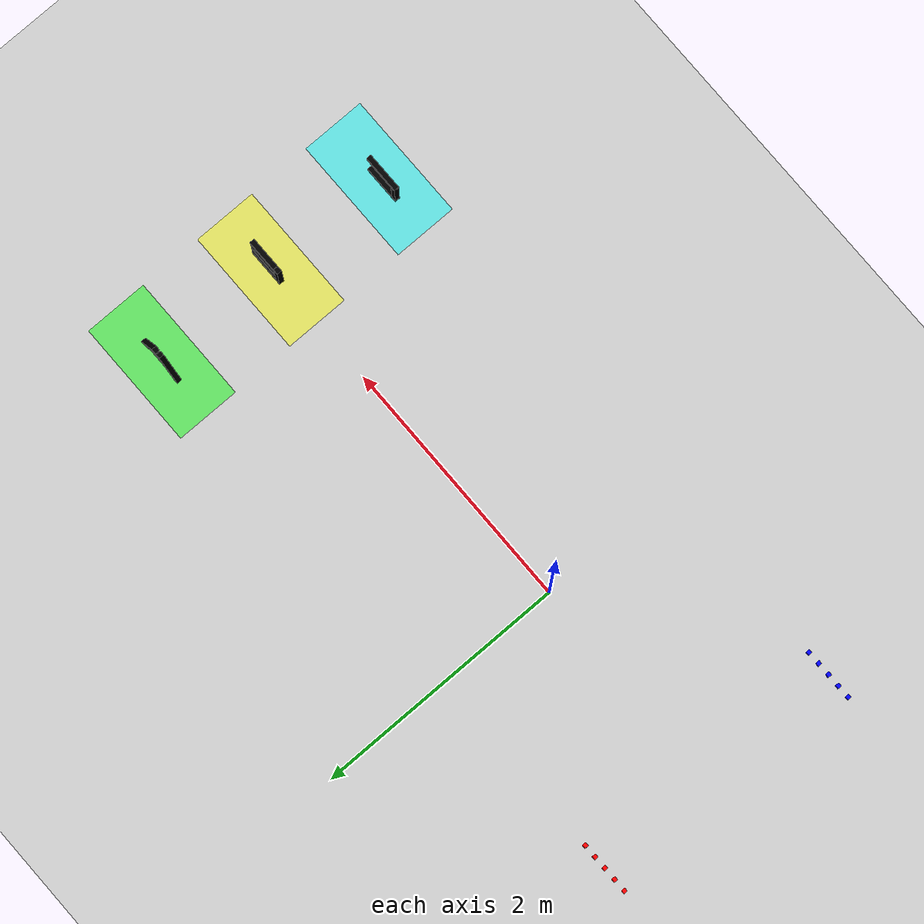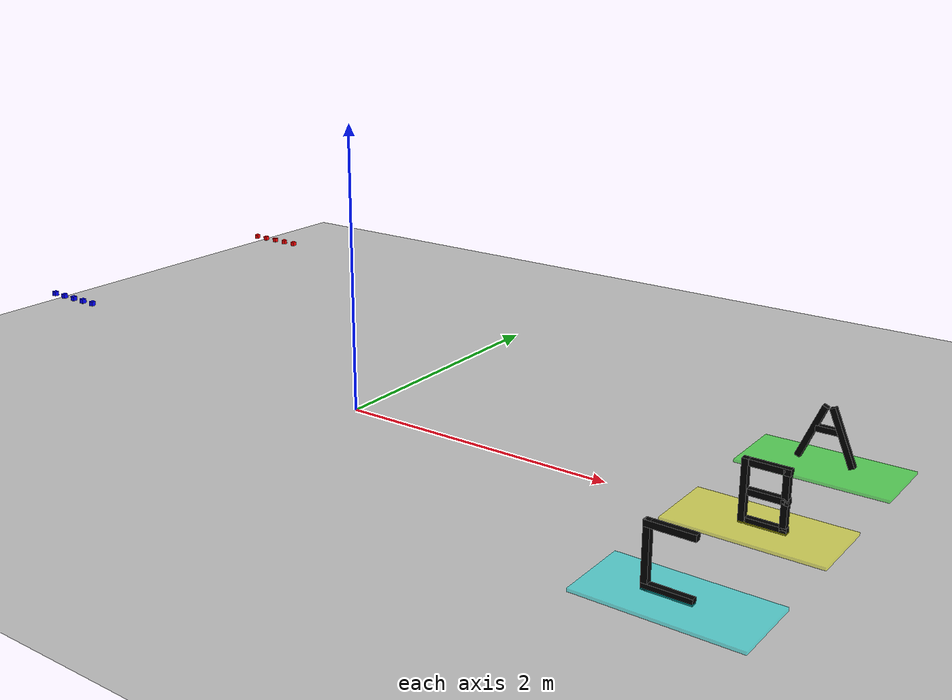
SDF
<sdf version="1.7">
 <world name="my_world">
  <model name="ground_plane">
   <static>1</static>
   <link name="link">
    <collision name="collision">
     <geometry><plane><normal>0 0 1</normal><size>100 100</size></plane></geometry>
     <surface>
      <contact><collide_bitmask>65535</collide_bitmask></contact>
      <friction><ode><mu>100</mu><mu2>50</mu2></ode></friction>
     </surface>
    </collision>
    <visual name="visual">
     <cast_shadows>0</cast_shadows>
     <geometry><plane><normal>0 0 1</normal><size>100 100</size></plane></geometry>
     <material>
      <script><uri>file://media/materials/scripts/gazebo.material</uri><name>Gazebo/Grey</name></script>
     </material>
    </visual>
   </link>
  </model>
  <model name="red_cube_1">
   <pose>-1.5 1 0.75 0 -0 0</pose>
   <link name="link">
    <inertial><mass>0.1</mass></inertial>
    <gravity>0</gravity>
    <collision name="collision">
     <laser_retro>130</laser_retro>
     <geometry><box><size>0.03 0.03 0.03</size></box></geometry>
     <surface><contact><collide_bitmask>0</collide_bitmask></contact></surface>
    </collision>
    <visual name="visual">
     <geometry><box><size>0.03 0.03 0.03</size></box></geometry>
     <material><ambient>1 0 0 1</ambient><diffuse>1 0 0 1</diffuse></material>
    </visual>
   </link>
  </model>
  <model name="red_cube_2">
   <pose>-1.6 1 0.75 0 -0 0</pose>
   <link name="link">
    <inertial><mass>0.1</mass></inertial>
    <gravity>0</gravity>
    <collision name="collision">
     <laser_retro>130</laser_retro>
     <geometry><box><size>0.03 0.03 0.03</size></box></geometry>
     <surface><contact><collide_bitmask>0</collide_bitmask></contact></surface>
    </collision>
    <visual name="visual">
     <geometry><box><size>0.03 0.03 0.03</size></box></geometry>
     <material><ambient>1 0 0 1</ambient><diffuse>1 0 0 1</diffuse></material>
    </visual>
   </link>
  </model>
  <model name="red_cube_3">
   <pose>-1.7 1 0.75 0 -0 0</pose>
   <link name="link">
    <inertial><mass>0.1</mass></inertial>
    <gravity>0</gravity>
    <collision name="collision">
     <laser_retro>130</laser_retro>
     <geometry><box><size>0.03 0.03 0.03</size></box></geometry>
     <surface><contact><collide_bitmask>0</collide_bitmask></contact></surface>
    </collision>
    <visual name="visual">
     <geometry><box><size>0.03 0.03 0.03</size></box></geometry>
     <material><ambient>1 0 0 1</ambient><diffuse>1 0 0 1</diffuse></material>
    </visual>
   </link>
  </model>
  <model name="red_cube_4">
   <pose>-1.8 1 0.75 0 -0 0</pose>
   <link name="link">
    <inertial><mass>0.1</mass></inertial>
    <gravity>0</gravity>
    <collision name="collision">
     <laser_retro>130</laser_retro>
     <geometry><box><size>0.03 0.03 0.03</size></box></geometry>
     <surface><contact><collide_bitmask>0</collide_bitmask></contact></surface>
    </collision>
    <visual name="visual">
     <geometry><box><size>0.03 0.03 0.03</size></box></geometry>
     <material><ambient>1 0 0 1</ambient><diffuse>1 0 0 1</diffuse></material>
    </visual>
   </link>
  </model>
  <model name="red_cube_5">
   <pose>-1.9 1 0.75 0 -0 0</pose>
   <link name="link">
    <inertial><mass>0.1</mass></inertial>
    <gravity>0</gravity>
    <collision name="collision">
     <laser_retro>130</laser_retro>
     <geometry><box><size>0.03 0.03 0.03</size></box></geometry>
     <surface><contact><collide_bitmask>0</collide_bitmask></contact></surface>
    </collision>
    <visual name="visual">
     <geometry><box><size>0.03 0.03 0.03</size></box></geometry>
     <material><ambient>1 0 0 1</ambient><diffuse>1 0 0 1</diffuse></material>
    </visual>
   </link>
  </model>
  <model name="blue_cube_1">
   <pose>-1.5 -1 0.75 0 -0 0</pose>
   <link name="link">
    <inertial><mass>0.1</mass></inertial>
    <gravity>0</gravity>
    <collision name="collision">
     <laser_retro>130</laser_retro>
     <geometry><box><size>0.03 0.03 0.03</size></box></geometry>
     <surface><contact><collide_bitmask>0</collide_bitmask></contact></surface>
    </collision>
    <visual name="visual">
     <geometry><box><size>0.03 0.03 0.03</size></box></geometry>
     <material><ambient>0 0 1 1</ambient><diffuse>0 0 1 1</diffuse></material>
    </visual>
   </link>
  </model>
  <model name="blue_cube_2">
   <pose>-1.6 -1 0.75 0 -0 0</pose>
   <link name="link">
    <inertial><mass>0.1</mass></inertial>
    <gravity>0</gravity>
    <collision name="collision">
     <laser_retro>130</laser_retro>
     <geometry><box><size>0.03 0.03 0.03</size></box></geometry>
     <surface><contact><collide_bitmask>0</collide_bitmask></contact></surface>
    </collision>
    <visual name="visual">
     <geometry><box><size>0.03 0.03 0.03</size></box></geometry>
     <material><ambient>0 0 1 1</ambient><diffuse>0 0 1 1</diffuse></material>
    </visual>
   </link>
  </model>
  <model name="blue_cube_3">
   <pose>-1.7 -1 0.75 0 -0 0</pose>
   <link name="link">
    <inertial><mass>0.1</mass></inertial>
    <gravity>0</gravity>
    <collision name="collision">
     <laser_retro>130</laser_retro>
     <geometry><box><size>0.03 0.03 0.03</size></box></geometry>
     <surface><contact><collide_bitmask>0</collide_bitmask></contact></surface>
    </collision>
    <visual name="visual">
     <geometry><box><size>0.03 0.03 0.03</size></box></geometry>
     <material><ambient>0 0 1 1</ambient><diffuse>0 0 1 1</diffuse></material>
    </visual>
   </link>
  </model>
  <model name="blue_cube_4">
   <pose>-1.8 -1 0.75 0 -0 0</pose>
   <link name="link">
    <inertial><mass>0.1</mass></inertial>
    <gravity>0</gravity>
    <collision name="collision">
     <laser_retro>130</laser_retro>
     <geometry><box><size>0.03 0.03 0.03</size></box></geometry>
     <surface><contact><collide_bitmask>0</collide_bitmask></contact></surface>
    </collision>
    <visual name="visual">
     <geometry><box><size>0.03 0.03 0.03</size></box></geometry>
     <material><ambient>0 0 1 1</ambient><diffuse>0 0 1 1</diffuse></material>
    </visual>
   </link>
  </model>
  <model name="blue_cube_5">
   <pose>-1.9 -1 0.75 0 -0 0</pose>
   <link name="link">
    <inertial><mass>0.1</mass></inertial>
    <gravity>0</gravity>
    <collision name="collision">
     <laser_retro>130</laser_retro>
     <geometry><box><size>0.03 0.03 0.03</size></box></geometry>
     <surface><contact><collide_bitmask>0</collide_bitmask></contact></surface>
    </collision>
    <visual name="visual">
     <geometry><box><size>0.03 0.03 0.03</size></box></geometry>
     <material><ambient>0 0 1 1</ambient><diffuse>0 0 1 1</diffuse></material>
    </visual>
   </link>
  </model>
  <model name="zone_a">
   <static>1</static>
   <pose>3 1 0.01 0 -0 0</pose>
   <link name="base">
    <visual name="visual">
     <geometry><box><size>1 0.5 0.02</size></box></geometry>
     <material><ambient>0 1 0 0.5</ambient><diffuse>0 1 0 0.5</diffuse></material>
    </visual>
   </link>
   <link name="letter_A_1">
    <pose>-0.1 0 0.22 0 0.4 0</pose>
    <visual name="v">
     <geometry><box><size>0.04 0.04 0.4</size></box></geometry>
     <material><ambient>0 0 0 1</ambient><diffuse>0 0 0 1</diffuse></material>
    </visual>
   </link>
   <link name="letter_A_2">
    <pose>0.1 0 0.22 0 -0.4 0</pose>
    <visual name="v">
     <geometry><box><size>0.04 0.04 0.4</size></box></geometry>
     <material><ambient>0 0 0 1</ambient><diffuse>0 0 0 1</diffuse></material>
    </visual>
   </link>
   <link name="letter_A_3">
    <pose>0 0 0.25 0 -0 0</pose>
    <visual name="v">
     <geometry><box><size>0.15 0.04 0.04</size></box></geometry>
     <material><ambient>0 0 0 1</ambient><diffuse>0 0 0 1</diffuse></material>
    </visual>
   </link>
  </model>
  <model name="zone_b">
   <static>1</static>
   <pose>3 0 0.01 0 -0 0</pose>
   <link name="base">
    <visual name="visual">
     <geometry><box><size>1 0.5 0.02</size></box></geometry>
     <material><ambient>1 1 0 0.5</ambient><diffuse>1 1 0 0.5</diffuse></material>
    </visual>
   </link>
   <link name="letter_B_vertical_stroke">
    <pose>-0.1 0 0.2 0 -0 0</pose>
    <visual name="v">
     <geometry><box><size>0.04 0.04 0.4</size></box></geometry>
     <material><ambient>0 0 0 1</ambient><diffuse>0 0 0 1</diffuse></material>
    </visual>
   </link>
   <link name="letter_B_top_horizontal">
    <pose>0.05 0 0.38 0 -0 0</pose>
    <visual name="v">
     <geometry><box><size>0.25 0.04 0.04</size></box></geometry>
     <material><ambient>0 0 0 1</ambient><diffuse>0 0 0 1</diffuse></material>
    </visual>
   </link>
   <link name="letter_B_middle_horizontal">
    <pose>0.05 0 0.2 0 -0 0</pose>
    <visual name="v">
     <geometry><box><size>0.25 0.04 0.04</size></box></geometry>
     <material><ambient>0 0 0 1</ambient><diffuse>0 0 0 1</diffuse></material>
    </visual>
   </link>
   <link name="letter_B_bottom_horizontal">
    <pose>0.05 0 0.02 0 -0 0</pose>
    <visual name="v">
     <geometry><box><size>0.25 0.04 0.04</size></box></geometry>
     <material><ambient>0 0 0 1</ambient><diffuse>0 0 0 1</diffuse></material>
    </visual>
   </link>
   <link name="letter_B_top_vertical_stroke">
    <pose>0.15 0 0.29 0 -0 0</pose>
    <visual name="v">
     <geometry><box><size>0.04 0.04 0.2</size></box></geometry>
     <material><ambient>0 0 0 1</ambient><diffuse>0 0 0 1</diffuse></material>
    </visual>
   </link>
   <link name="letter_B_bottom_vertical_stroke">
    <pose>0.15 0 0.11 0 -0 0</pose>
    <visual name="v">
     <geometry><box><size>0.04 0.04 0.2</size></box></geometry>
     <material><ambient>0 0 0 1</ambient><diffuse>0 0 0 1</diffuse></material>
    </visual>
   </link>
  </model>
  <model name="zone_c">
   <static>1</static>
   <pose>3 -1 0.01 0 -0 0</pose>
   <link name="base">
    <visual name="visual">
     <geometry><box><size>1 0.5 0.02</size></box></geometry>
     <material><ambient>0 1 1 0.5</ambient><diffuse>0 1 1 0.5</diffuse></material>
    </visual>
   </link>
   <link name="letter_C_1">
    <pose>-0.05 0 0.38 0 -0 0</pose>
    <visual name="v">
     <geometry><box><size>0.3 0.04 0.04</size></box></geometry>
     <material><ambient>0 0 0 1</ambient><diffuse>0 0 0 1</diffuse></material>
    </visual>
   </link>
   <link name="letter_C_2">
    <pose>-0.05 0 0.02 0 -0 0</pose>
    <visual name="v">
     <geometry><box><size>0.3 0.04 0.04</size></box></geometry>
     <material><ambient>0 0 0 1</ambient><diffuse>0 0 0 1</diffuse></material>
    </visual>
   </link>
   <link name="letter_C_3">
    <pose>-0.18 0 0.2 0 -0 0</pose>
    <visual name="v">
     <geometry><box><size>0.04 0.04 0.4</size></box></geometry>
     <material><ambient>0 0 0 1</ambient><diffuse>0 0 0 1</diffuse></material>
    </visual>
   </link>
  </model>
 </world>
</sdf>
